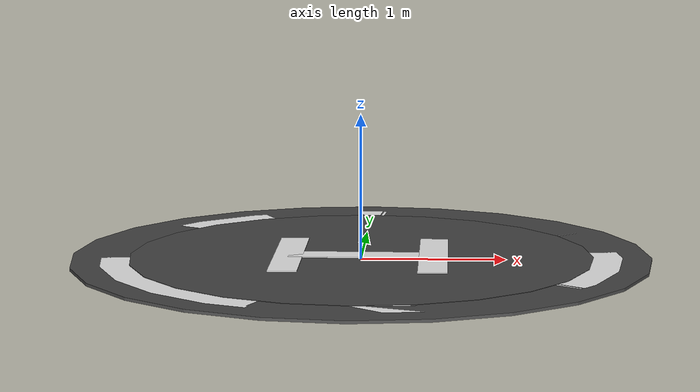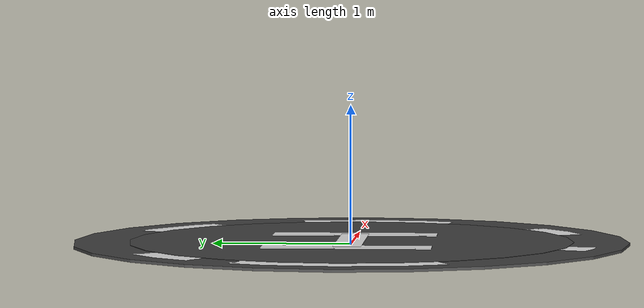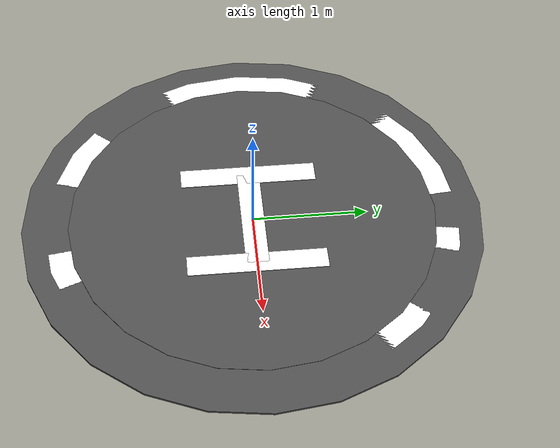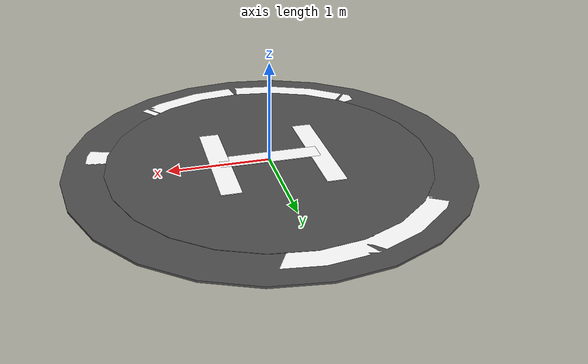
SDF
<?xml version="1.0" ?>
<sdf version="1.9">
  <model name="helipad">
    <static>true</static>

    <!-- Base pad (dark circle) -->
    <link name="pad_base">
      <pose>0 0 0.01 0 0 0</pose>
      <visual name="pad_visual">
        <geometry>
          <cylinder>
            <radius>2.0</radius>
            <length>0.02</length>
          </cylinder>
        </geometry>
        <material>
          <ambient>0.2 0.2 0.2 1</ambient>
          <diffuse>0.3 0.3 0.3 1</diffuse>
        </material>
      </visual>
      <collision name="pad_collision">
        <geometry>
          <cylinder>
            <radius>2.0</radius>
            <length>0.02</length>
          </cylinder>
        </geometry>
      </collision>
    </link>

    <!-- H shape - Left vertical bar -->
    <link name="h_left">
      <pose>-0.5 0 0.025 0 0 0</pose>
      <visual name="visual">
        <geometry>
          <box>
            <size>0.2 1.2 0.01</size>
          </box>
        </geometry>
        <material>
          <ambient>1 1 1 1</ambient>
          <diffuse>1 1 1 1</diffuse>
        </material>
      </visual>
    </link>

    <!-- H shape - Right vertical bar -->
    <link name="h_right">
      <pose>0.5 0 0.025 0 0 0</pose>
      <visual name="visual">
        <geometry>
          <box>
            <size>0.2 1.2 0.01</size>
          </box>
        </geometry>
        <material>
          <ambient>1 1 1 1</ambient>
          <diffuse>1 1 1 1</diffuse>
        </material>
      </visual>
    </link>

    <!-- H shape - Horizontal bar -->
    <link name="h_center">
      <pose>0 0 0.025 0 0 0</pose>
      <visual name="visual">
        <geometry>
          <box>
            <size>1.0 0.2 0.01</size>
          </box>
        </geometry>
        <material>
          <ambient>1 1 1 1</ambient>
          <diffuse>1 1 1 1</diffuse>
        </material>
      </visual>
    </link>

    <!-- Outer circle ring (white) for visibility -->
    <link name="outer_ring">
      <pose>0 0 0.015 0 0 0</pose>
      <visual name="visual">
        <geometry>
          <cylinder>
            <radius>1.8</radius>
            <length>0.01</length>
          </cylinder>
        </geometry>
        <material>
          <ambient>1 1 1 1</ambient>
          <diffuse>1 1 1 1</diffuse>
        </material>
      </visual>
    </link>

    <!-- Inner circle (dark, covers center of ring) -->
    <link name="inner_circle">
      <pose>0 0 0.018 0 0 0</pose>
      <visual name="visual">
        <geometry>
          <cylinder>
            <radius>1.6</radius>
            <length>0.01</length>
          </cylinder>
        </geometry>
        <material>
          <ambient>0.2 0.2 0.2 1</ambient>
          <diffuse>0.3 0.3 0.3 1</diffuse>
        </material>
      </visual>
    </link>

  </model>
</sdf>
